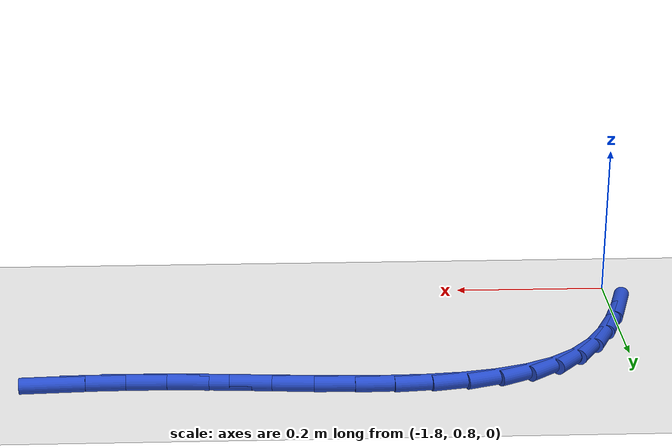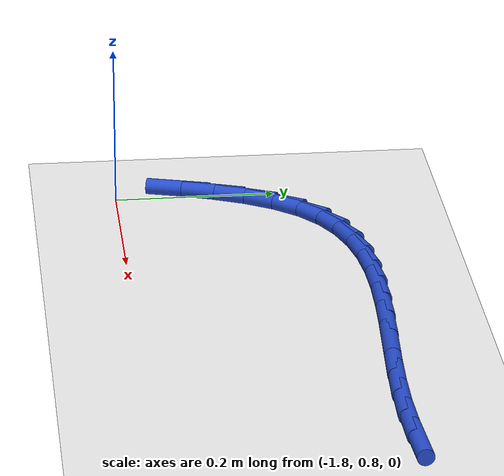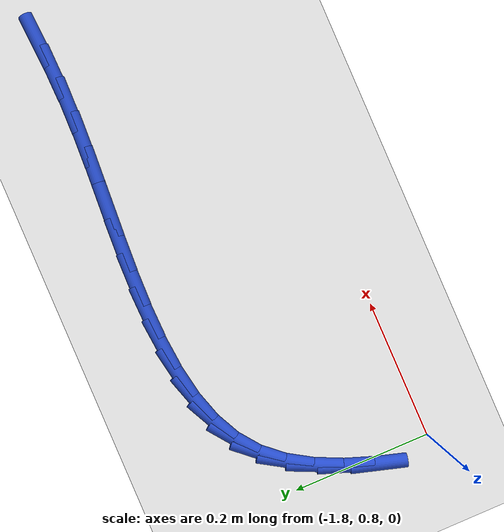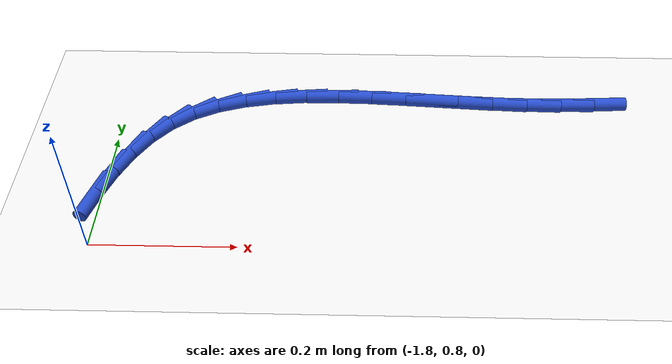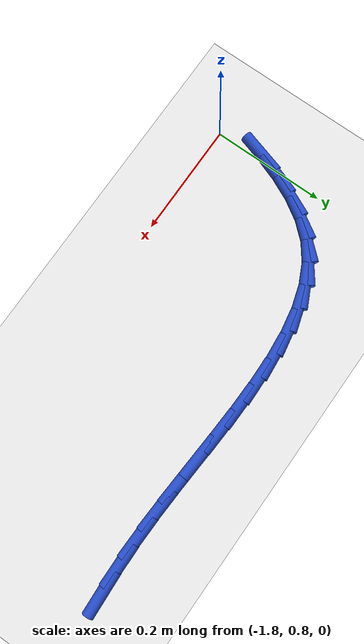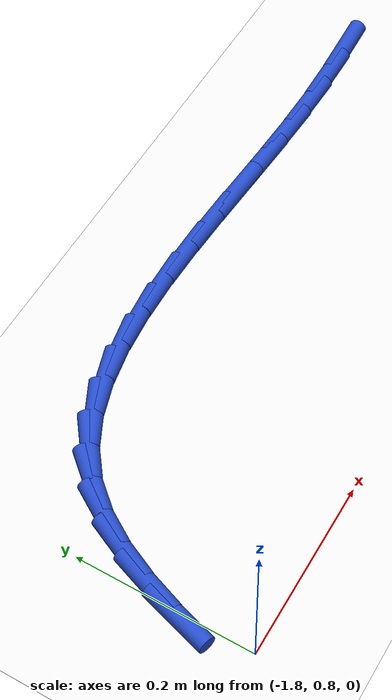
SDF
<sdf version="1.6">
 <world name="default">
  <model name="ground_plane">
   <static>1</static>
   <link name="link">
    <collision name="collision">
     <geometry><plane><normal>0 0 1</normal><size>100 100</size></plane></geometry>
     <surface><friction><ode><mu>100</mu><mu2>50</mu2></ode></friction></surface>
    </collision>
    <visual name="visual">
     <cast_shadows>0</cast_shadows>
     <geometry><plane><normal>0 0 1</normal><size>100 100</size></plane></geometry>
     <material>
      <script><uri>file://media/materials/scripts/gazebo.material</uri><name>Gazebo/WhiteGlow</name></script>
     </material>
    </visual>
   </link>
  </model>
  <model name="line">
   <link name="link_37">
    <pose>-1.0784288335219487 1.0823856213672975 0.01 0 1.57 0.05247733287333691</pose>
    <collision name="collision">
     <geometry><cylinder><radius>0.01</radius><length>0.08</length></cylinder></geometry>
    </collision>
    <visual name="visual">
     <material>
      <script><name>Gazebo/Blue</name><uri>file://media/materials/scripts/gazebo.material</uri></script>
     </material>
     <geometry><cylinder><radius>0.01</radius><length>0.08</length></cylinder></geometry>
    </visual>
   </link>
   <link name="link_38">
    <pose>-1.1274841518253818 1.0798089634043708 0.01 0 1.57 0.01790679159937567</pose>
    <collision name="collision">
     <geometry><cylinder><radius>0.01</radius><length>0.08</length></cylinder></geometry>
    </collision>
    <visual name="visual">
     <material>
      <script><name>Gazebo/Blue</name><uri>file://media/materials/scripts/gazebo.material</uri></script>
     </material>
     <geometry><cylinder><radius>0.01</radius><length>0.08</length></cylinder></geometry>
    </visual>
   </link>
   <link name="link_39">
    <pose>-1.177776668529454 1.0789082895187014 0.01 0 1.57 -0.02198568389857712</pose>
    <collision name="collision">
     <geometry><cylinder><radius>0.01</radius><length>0.08</length></cylinder></geometry>
    </collision>
    <visual name="visual">
     <material>
      <script><name>Gazebo/Blue</name><uri>file://media/materials/scripts/gazebo.material</uri></script>
     </material>
     <geometry><cylinder><radius>0.01</radius><length>0.08</length></cylinder></geometry>
    </visual>
   </link>
   <link name="link_40">
    <pose>-1.2292043628532534 1.0800391447628872 0.01 0 1.57 -0.048979455826992195</pose>
    <collision name="collision">
     <geometry><cylinder><radius>0.01</radius><length>0.08</length></cylinder></geometry>
    </collision>
    <visual name="visual">
     <material>
      <script><name>Gazebo/Blue</name><uri>file://media/materials/scripts/gazebo.material</uri></script>
     </material>
     <geometry><cylinder><radius>0.01</radius><length>0.08</length></cylinder></geometry>
    </visual>
   </link>
   <link name="link_41">
    <pose>-1.2812986176939245 1.0825927353536438 0.01 0 1.57 -0.06212567756247998</pose>
    <collision name="collision">
     <geometry><cylinder><radius>0.01</radius><length>0.08</length></cylinder></geometry>
    </collision>
    <visual name="visual">
     <material>
      <script><name>Gazebo/Blue</name><uri>file://media/materials/scripts/gazebo.material</uri></script>
     </material>
     <geometry><cylinder><radius>0.01</radius><length>0.08</length></cylinder></geometry>
    </visual>
   </link>
   <link name="link_42">
    <pose>-1.3335461726921143 1.0858428325433442 0.01 0 1.57 -0.06198494316220264</pose>
    <collision name="collision">
     <geometry><cylinder><radius>0.01</radius><length>0.08</length></cylinder></geometry>
    </collision>
    <visual name="visual">
     <material>
      <script><name>Gazebo/Blue</name><uri>file://media/materials/scripts/gazebo.material</uri></script>
     </material>
     <geometry><cylinder><radius>0.01</radius><length>0.08</length></cylinder></geometry>
    </visual>
   </link>
   <link name="link_43">
    <pose>-1.3854337674884754 1.0890632075843631 0.01 0 1.57 -0.04827089977322443</pose>
    <collision name="collision">
     <geometry><cylinder><radius>0.01</radius><length>0.08</length></cylinder></geometry>
    </collision>
    <visual name="visual">
     <material>
      <script><name>Gazebo/Blue</name><uri>file://media/materials/scripts/gazebo.material</uri></script>
     </material>
     <geometry><cylinder><radius>0.01</radius><length>0.08</length></cylinder></geometry>
    </visual>
   </link>
   <link name="link_44">
    <pose>-1.4364481417236559 1.0915276317290739 0.01 0 1.57 -0.019789602316324678</pose>
    <collision name="collision">
     <geometry><cylinder><radius>0.01</radius><length>0.08</length></cylinder></geometry>
    </collision>
    <visual name="visual">
     <material>
      <script><name>Gazebo/Blue</name><uri>file://media/materials/scripts/gazebo.material</uri></script>
     </material>
     <geometry><cylinder><radius>0.01</radius><length>0.08</length></cylinder></geometry>
    </visual>
   </link>
   <link name="link_45">
    <pose>-1.4860760350383078 1.09250987622985 0.01 0 1.57 0.025684929896435556</pose>
    <collision name="collision">
     <geometry><cylinder><radius>0.01</radius><length>0.08</length></cylinder></geometry>
    </collision>
    <visual name="visual">
     <material>
      <script><name>Gazebo/Blue</name><uri>file://media/materials/scripts/gazebo.material</uri></script>
     </material>
     <geometry><cylinder><radius>0.01</radius><length>0.08</length></cylinder></geometry>
    </visual>
   </link>
   <link name="link_46">
    <pose>-1.5338041870730794 1.0912837123390653 0.01 0 1.57 0.0915624658523891</pose>
    <collision name="collision">
     <geometry><cylinder><radius>0.01</radius><length>0.08</length></cylinder></geometry>
    </collision>
    <visual name="visual">
     <material>
      <script><name>Gazebo/Blue</name><uri>file://media/materials/scripts/gazebo.material</uri></script>
     </material>
     <geometry><cylinder><radius>0.01</radius><length>0.08</length></cylinder></geometry>
    </visual>
   </link>
   <link name="link_47">
    <pose>-1.5791193374686214 1.0871229113090934 0.01 0 1.57 0.18246919020248475</pose>
    <collision name="collision">
     <geometry><cylinder><radius>0.01</radius><length>0.08</length></cylinder></geometry>
    </collision>
    <visual name="visual">
     <material>
      <script><name>Gazebo/Blue</name><uri>file://media/materials/scripts/gazebo.material</uri></script>
     </material>
     <geometry><cylinder><radius>0.01</radius><length>0.08</length></cylinder></geometry>
    </visual>
   </link>
   <link name="link_48">
    <pose>-1.6215082258655835 1.079301244392308 0.01 0 1.57 0.3037520494369437</pose>
    <collision name="collision">
     <geometry><cylinder><radius>0.01</radius><length>0.08</length></cylinder></geometry>
    </collision>
    <visual name="visual">
     <material>
      <script><name>Gazebo/Blue</name><uri>file://media/materials/scripts/gazebo.material</uri></script>
     </material>
     <geometry><cylinder><radius>0.01</radius><length>0.08</length></cylinder></geometry>
    </visual>
   </link>
   <link name="link_49">
    <pose>-1.6604575919046156 1.0670924828410824 0.01 0 1.57 0.4596115266989873</pose>
    <collision name="collision">
     <geometry><cylinder><radius>0.01</radius><length>0.08</length></cylinder></geometry>
    </collision>
    <visual name="visual">
     <material>
      <script><name>Gazebo/Blue</name><uri>file://media/materials/scripts/gazebo.material</uri></script>
     </material>
     <geometry><cylinder><radius>0.01</radius><length>0.08</length></cylinder></geometry>
    </visual>
   </link>
   <link name="link_50">
    <pose>-1.6954541752263688 1.049770397907791 0.01 0 1.57 0.649001968652304</pose>
    <collision name="collision">
     <geometry><cylinder><radius>0.01</radius><length>0.08</length></cylinder></geometry>
    </collision>
    <visual name="visual">
     <material>
      <script><name>Gazebo/Blue</name><uri>file://media/materials/scripts/gazebo.material</uri></script>
     </material>
     <geometry><cylinder><radius>0.01</radius><length>0.08</length></cylinder></geometry>
    </visual>
   </link>
   <link name="link_51">
    <pose>-1.7259848262118644 1.0266089060878925 0.01 0 1.57 0.8500088046293869</pose>
    <collision name="collision">
     <geometry><cylinder><radius>0.01</radius><length>0.08</length></cylinder></geometry>
    </collision>
    <visual name="visual">
     <material>
      <script><name>Gazebo/Blue</name><uri>file://media/materials/scripts/gazebo.material</uri></script>
     </material>
     <geometry><cylinder><radius>0.01</radius><length>0.08</length></cylinder></geometry>
    </visual>
   </link>
   <link name="link_52">
    <pose>-1.7517977423956759 0.9972246973927744 0.01 0 1.57 1.015436989228022</pose>
    <collision name="collision">
     <geometry><cylinder><radius>0.01</radius><length>0.08</length></cylinder></geometry>
    </collision>
    <visual name="visual">
     <material>
      <script><name>Gazebo/Blue</name><uri>file://media/materials/scripts/gazebo.material</uri></script>
     </material>
     <geometry><cylinder><radius>0.01</radius><length>0.08</length></cylinder></geometry>
    </visual>
   </link>
   <link name="link_53">
    <pose>-1.7734618641705988 0.96231091861311 0.01 0 1.57 1.138472140044727</pose>
    <collision name="collision">
     <geometry><cylinder><radius>0.01</radius><length>0.08</length></cylinder></geometry>
    </collision>
    <visual name="visual">
     <material>
      <script><name>Gazebo/Blue</name><uri>file://media/materials/scripts/gazebo.material</uri></script>
     </material>
     <geometry><cylinder><radius>0.01</radius><length>0.08</length></cylinder></geometry>
    </visual>
   </link>
   <link name="link_54">
    <pose>-1.7917068273969143 0.9227714789283563 0.01 0 1.57 1.225621178700942</pose>
    <collision name="collision">
     <geometry><cylinder><radius>0.01</radius><length>0.08</length></cylinder></geometry>
    </collision>
    <visual name="visual">
     <material>
      <script><name>Gazebo/Blue</name><uri>file://media/materials/scripts/gazebo.material</uri></script>
     </material>
     <geometry><cylinder><radius>0.01</radius><length>0.08</length></cylinder></geometry>
    </visual>
   </link>
   <link name="link_55">
    <pose>-1.807262267934905 0.8795102875179723 0.01 0 1.57 1.283888283617322</pose>
    <collision name="collision">
     <geometry><cylinder><radius>0.01</radius><length>0.08</length></cylinder></geometry>
    </collision>
    <visual name="visual">
     <material>
      <script><name>Gazebo/Blue</name><uri>file://media/materials/scripts/gazebo.material</uri></script>
     </material>
     <geometry><cylinder><radius>0.01</radius><length>0.08</length></cylinder></geometry>
    </visual>
   </link>
  </model>
 </world>
</sdf>
